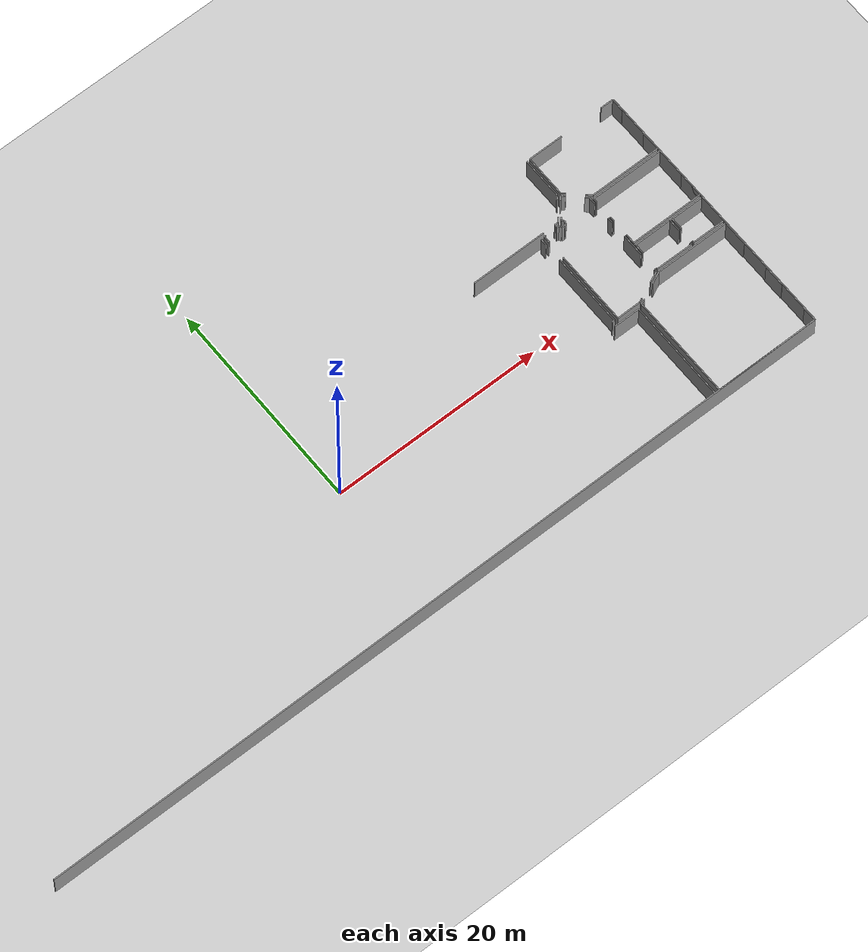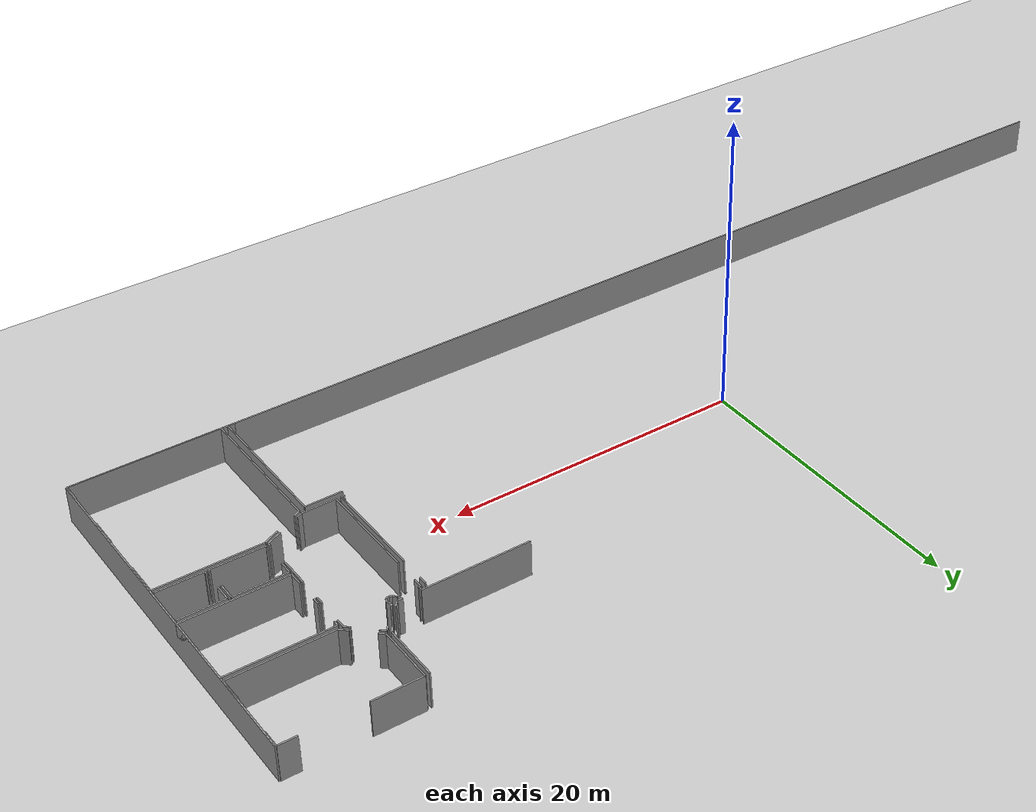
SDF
<sdf version="1.6">
 <world name="default">
  <model name="ground_plane">
   <static>1</static>
   <link name="link">
    <collision name="collision">
     <geometry><plane><normal>0 0 1</normal><size>100 100</size></plane></geometry>
     <surface><friction><ode><mu>100</mu><mu2>50</mu2></ode></friction></surface>
    </collision>
    <visual name="visual">
     <cast_shadows>0</cast_shadows>
     <geometry><plane><normal>0 0 1</normal><size>100 100</size></plane></geometry>
     <material>
      <script><uri>file://media/materials/scripts/gazebo.material</uri><name>Gazebo/Grey</name></script>
     </material>
    </visual>
   </link>
  </model>
  <model name="0510030968_A-40">
   <static>1</static>
   <link name="Wall_244">
    <collision name="Wall_244_Collision">
     <geometry><box><size>0.449204110929 0.1 2.5</size></box></geometry>
     <pose>0.224602055465 0 1.25 0 0 0</pose>
    </collision>
    <visual name="Wall_244_Visual">
     <pose>0.224602055465 0 1.25 0 0 0</pose>
     <geometry><box><size>0.449204110929 0.1 2.5</size></box></geometry>
     <material>
      <script><uri>file://media/materials/scripts/gazebo.material</uri><name>Gazebo/Grey</name></script>
      <ambient>1 1 1 1</ambient>
     </material>
    </visual>
    <pose>67.0569254418 -25.727225377 0 0 0 3.14159265359</pose>
   </link>
   <link name="Wall_248">
    <collision name="Wall_248_Collision">
     <geometry><box><size>2.50720937028 0.1 2.5</size></box></geometry>
     <pose>1.25360468514 0 1.25 0 0 0</pose>
    </collision>
    <visual name="Wall_248_Visual">
     <pose>1.25360468514 0 1.25 0 0 0</pose>
     <geometry><box><size>2.50720937028 0.1 2.5</size></box></geometry>
     <material>
      <script><uri>file://media/materials/scripts/gazebo.material</uri><name>Gazebo/Grey</name></script>
      <ambient>1 1 1 1</ambient>
     </material>
    </visual>
    <pose>64.5424749419 -16.0744184865 0 0 0 0.0</pose>
   </link>
   <link name="Wall_249">
    <collision name="Wall_249_Collision">
     <geometry><box><size>9.6528096065 0.1 2.5</size></box></geometry>
     <pose>4.82640480325 0 1.25 0 0 0</pose>
    </collision>
    <visual name="Wall_249_Visual">
     <pose>4.82640480325 0 1.25 0 0 0</pose>
     <geometry><box><size>9.6528096065 0.1 2.5</size></box></geometry>
     <material>
      <script><uri>file://media/materials/scripts/gazebo.material</uri><name>Gazebo/Grey</name></script>
      <ambient>1 1 1 1</ambient>
     </material>
    </visual>
    <pose>67.0496843122 -16.0744184865 0 0 0 -1.57004616901</pose>
   </link>
   <link name="Wall_255">
    <collision name="Wall_255_Collision">
     <geometry><box><size>0.601903019678 0.1 2.5</size></box></geometry>
     <pose>0.300951509839 0 1.25 0 0 0</pose>
    </collision>
    <visual name="Wall_255_Visual">
     <pose>0.300951509839 0 1.25 0 0 0</pose>
     <geometry><box><size>0.601903019678 0.1 2.5</size></box></geometry>
     <material>
      <script><uri>file://media/materials/scripts/gazebo.material</uri><name>Gazebo/Grey</name></script>
      <ambient>1 1 1 1</ambient>
     </material>
    </visual>
    <pose>64.8763291284 -6.28021901241 0 0 0 -1.57079632679</pose>
   </link>
   <link name="Wall_256">
    <collision name="Wall_256_Collision">
     <geometry><box><size>7.01144606629 0.1 2.5</size></box></geometry>
     <pose>3.50572303314 0 1.25 0 0 0</pose>
    </collision>
    <visual name="Wall_256_Visual">
     <pose>3.50572303314 0 1.25 0 0 0</pose>
     <geometry><box><size>7.01144606629 0.1 2.5</size></box></geometry>
     <material>
      <script><uri>file://media/materials/scripts/gazebo.material</uri><name>Gazebo/Grey</name></script>
      <ambient>1 1 1 1</ambient>
     </material>
    </visual>
    <pose>64.8763291284 -8.64070022994 0 0 0 -1.57079632679</pose>
   </link>
   <link name="Wall_257">
    <collision name="Wall_257_Collision">
     <geometry><box><size>0.233240596059 0.1 2.5</size></box></geometry>
     <pose>0.11662029803 0 1.25 0 0 0</pose>
    </collision>
    <visual name="Wall_257_Visual">
     <pose>0.11662029803 0 1.25 0 0 0</pose>
     <geometry><box><size>0.233240596059 0.1 2.5</size></box></geometry>
     <material>
      <script><uri>file://media/materials/scripts/gazebo.material</uri><name>Gazebo/Grey</name></script>
      <ambient>1 1 1 1</ambient>
     </material>
    </visual>
    <pose>64.8763291284 -15.6521462962 0 0 0 3.14159265359</pose>
   </link>
   <link name="Wall_265">
    <collision name="Wall_265_Collision">
     <geometry><box><size>7.01678163548 0.1 2.5</size></box></geometry>
     <pose>3.50839081774 0 1.25 0 0 0</pose>
    </collision>
    <visual name="Wall_265_Visual">
     <pose>3.50839081774 0 1.25 0 0 0</pose>
     <geometry><box><size>7.01678163548 0.1 2.5</size></box></geometry>
     <material>
      <script><uri>file://media/materials/scripts/gazebo.material</uri><name>Gazebo/Grey</name></script>
      <ambient>1 1 1 1</ambient>
     </material>
    </visual>
    <pose>65.2148836973 -15.6658663313 0 0 0 1.57079632679</pose>
   </link>
   <link name="Wall_266">
    <collision name="Wall_266_Collision">
     <geometry><box><size>0.673933203755 0.1 2.5</size></box></geometry>
     <pose>0.336966601878 0 1.25 0 0 0</pose>
    </collision>
    <visual name="Wall_266_Visual">
     <pose>0.336966601878 0 1.25 0 0 0</pose>
     <geometry><box><size>0.673933203755 0.1 2.5</size></box></geometry>
     <material>
      <script><uri>file://media/materials/scripts/gazebo.material</uri><name>Gazebo/Grey</name></script>
      <ambient>1 1 1 1</ambient>
     </material>
    </visual>
    <pose>65.2148836973 -6.88212203209 0 0 0 1.57079632679</pose>
   </link>
   <link name="Wall_267">
    <collision name="Wall_267_Collision">
     <geometry><box><size>0.166545981173 0.1 2.5</size></box></geometry>
     <pose>0.0832729905865 0 1.25 0 0 0</pose>
    </collision>
    <visual name="Wall_267_Visual">
     <pose>0.0832729905865 0 1.25 0 0 0</pose>
     <geometry><box><size>0.166545981173 0.1 2.5</size></box></geometry>
     <material>
      <script><uri>file://media/materials/scripts/gazebo.material</uri><name>Gazebo/Grey</name></script>
      <ambient>1 1 1 1</ambient>
     </material>
    </visual>
    <pose>65.2148836973 -6.20818882833 0 0 0 0.0</pose>
   </link>
   <link name="Wall_268">
    <collision name="Wall_268_Collision">
     <geometry><box><size>0.214439066529 0.1 2.5</size></box></geometry>
     <pose>0.107219533265 0 1.25 0 0 0</pose>
    </collision>
    <visual name="Wall_268_Visual">
     <pose>0.107219533265 0 1.25 0 0 0</pose>
     <geometry><box><size>0.214439066529 0.1 2.5</size></box></geometry>
     <material>
      <script><uri>file://media/materials/scripts/gazebo.material</uri><name>Gazebo/Grey</name></script>
      <ambient>1 1 1 1</ambient>
     </material>
    </visual>
    <pose>66.5218440743 -6.20818882833 0 0 0 0.0</pose>
   </link>
   <link name="Wall_269">
    <collision name="Wall_269_Collision">
     <geometry><box><size>0.289569648859 0.1 2.5</size></box></geometry>
     <pose>0.14478482443 0 1.25 0 0 0</pose>
    </collision>
    <visual name="Wall_269_Visual">
     <pose>0.14478482443 0 1.25 0 0 0</pose>
     <geometry><box><size>0.289569648859 0.1 2.5</size></box></geometry>
     <material>
      <script><uri>file://media/materials/scripts/gazebo.material</uri><name>Gazebo/Grey</name></script>
      <ambient>1 1 1 1</ambient>
     </material>
    </visual>
    <pose>66.7362831409 -6.20818882833 0 0 0 -0.913870261158</pose>
   </link>
   <link name="Wall_270">
    <collision name="Wall_270_Collision">
     <geometry><box><size>0.207731919569 0.1 2.5</size></box></geometry>
     <pose>0.103865959784 0 1.25 0 0 0</pose>
    </collision>
    <visual name="Wall_270_Visual">
     <pose>0.103865959784 0 1.25 0 0 0</pose>
     <geometry><box><size>0.207731919569 0.1 2.5</size></box></geometry>
     <material>
      <script><uri>file://media/materials/scripts/gazebo.material</uri><name>Gazebo/Grey</name></script>
      <ambient>1 1 1 1</ambient>
     </material>
    </visual>
    <pose>66.9131191483 -6.43749126618 0 0 0 -0.34109050254</pose>
   </link>
   <link name="Wall_271">
    <collision name="Wall_271_Collision">
     <geometry><box><size>0.215877186938 0.1 2.5</size></box></geometry>
     <pose>0.107938593469 0 1.25 0 0 0</pose>
    </collision>
    <visual name="Wall_271_Visual">
     <pose>0.107938593469 0 1.25 0 0 0</pose>
     <geometry><box><size>0.215877186938 0.1 2.5</size></box></geometry>
     <material>
      <script><uri>file://media/materials/scripts/gazebo.material</uri><name>Gazebo/Grey</name></script>
      <ambient>1 1 1 1</ambient>
     </material>
    </visual>
    <pose>67.1088837227 -6.50698070302 0 0 0 0.358977296068</pose>
   </link>
   <link name="Wall_272">
    <collision name="Wall_272_Collision">
     <geometry><box><size>0.266273976943 0.1 2.5</size></box></geometry>
     <pose>0.133136988472 0 1.25 0 0 0</pose>
    </collision>
    <visual name="Wall_272_Visual">
     <pose>0.133136988472 0 1.25 0 0 0</pose>
     <geometry><box><size>0.266273976943 0.1 2.5</size></box></geometry>
     <material>
      <script><uri>file://media/materials/scripts/gazebo.material</uri><name>Gazebo/Grey</name></script>
      <ambient>1 1 1 1</ambient>
     </material>
    </visual>
    <pose>67.3110001651 -6.4311393981 0 0 0 1.18125325052</pose>
   </link>
   <link name="Wall_273">
    <collision name="Wall_273_Collision">
     <geometry><box><size>0.296563000179 0.1 2.5</size></box></geometry>
     <pose>0.14828150009 0 1.25 0 0 0</pose>
    </collision>
    <visual name="Wall_273_Visual">
     <pose>0.14828150009 0 1.25 0 0 0</pose>
     <geometry><box><size>0.296563000179 0.1 2.5</size></box></geometry>
     <material>
      <script><uri>file://media/materials/scripts/gazebo.material</uri><name>Gazebo/Grey</name></script>
      <ambient>1 1 1 1</ambient>
     </material>
    </visual>
    <pose>67.4121219051 -6.18481395378 0 0 0 2.0344439358</pose>
   </link>
   <link name="Wall_274">
    <collision name="Wall_274_Collision">
     <geometry><box><size>0.232957461632 0.1 2.5</size></box></geometry>
     <pose>0.116478730816 0 1.25 0 0 0</pose>
    </collision>
    <visual name="Wall_274_Visual">
     <pose>0.116478730816 0 1.25 0 0 0</pose>
     <geometry><box><size>0.232957461632 0.1 2.5</size></box></geometry>
     <material>
      <script><uri>file://media/materials/scripts/gazebo.material</uri><name>Gazebo/Grey</name></script>
      <ambient>1 1 1 1</ambient>
     </material>
    </visual>
    <pose>67.2794948994 -5.91955994258 0 0 0 0.997918874391</pose>
   </link>
   <link name="Wall_275">
    <collision name="Wall_275_Collision">
     <geometry><box><size>0.393763568529 0.1 2.5</size></box></geometry>
     <pose>0.196881784265 0 1.25 0 0 0</pose>
    </collision>
    <visual name="Wall_275_Visual">
     <pose>0.196881784265 0 1.25 0 0 0</pose>
     <geometry><box><size>0.393763568529 0.1 2.5</size></box></geometry>
     <material>
      <script><uri>file://media/materials/scripts/gazebo.material</uri><name>Gazebo/Grey</name></script>
      <ambient>1 1 1 1</ambient>
     </material>
    </visual>
    <pose>68.3594395112 -4.47412884129 0 0 0 0.916261272057</pose>
   </link>
   <link name="Wall_276">
    <collision name="Wall_276_Collision">
     <geometry><box><size>0.421242750678 0.1 2.5</size></box></geometry>
     <pose>0.210621375339 0 1.25 0 0 0</pose>
    </collision>
    <visual name="Wall_276_Visual">
     <pose>0.210621375339 0 1.25 0 0 0</pose>
     <geometry><box><size>0.421242750678 0.1 2.5</size></box></geometry>
     <material>
      <script><uri>file://media/materials/scripts/gazebo.material</uri><name>Gazebo/Grey</name></script>
      <ambient>1 1 1 1</ambient>
     </material>
    </visual>
    <pose>68.5991590127 -4.1617439689 0 0 0 -0.761085548809</pose>
   </link>
   <link name="Wall_277">
    <collision name="Wall_277_Collision">
     <geometry><box><size>0.431219861559 0.1 2.5</size></box></geometry>
     <pose>0.215609930779 0 1.25 0 0 0</pose>
    </collision>
    <visual name="Wall_277_Visual">
     <pose>0.215609930779 0 1.25 0 0 0</pose>
     <geometry><box><size>0.431219861559 0.1 2.5</size></box></geometry>
     <material>
      <script><uri>file://media/materials/scripts/gazebo.material</uri><name>Gazebo/Grey</name></script>
      <ambient>1 1 1 1</ambient>
     </material>
    </visual>
    <pose>70.0307430415 -5.52002744007 0 0 0 -0.771649029836</pose>
   </link>
   <link name="Wall_278">
    <collision name="Wall_278_Collision">
     <geometry><box><size>0.626548267846 0.1 2.5</size></box></geometry>
     <pose>0.313274133923 0 1.25 0 0 0</pose>
    </collision>
    <visual name="Wall_278_Visual">
     <pose>0.313274133923 0 1.25 0 0 0</pose>
     <geometry><box><size>0.626548267846 0.1 2.5</size></box></geometry>
     <material>
      <script><uri>file://media/materials/scripts/gazebo.material</uri><name>Gazebo/Grey</name></script>
      <ambient>1 1 1 1</ambient>
     </material>
    </visual>
    <pose>70.3398249425 -5.82072487519 0 0 0 -1.57079632679</pose>
   </link>
   <link name="Wall_279">
    <collision name="Wall_279_Collision">
     <geometry><box><size>0.526315789474 0.1 2.5</size></box></geometry>
     <pose>0.263157894737 0 1.25 0 0 0</pose>
    </collision>
    <visual name="Wall_279_Visual">
     <pose>0.263157894737 0 1.25 0 0 0</pose>
     <geometry><box><size>0.526315789474 0.1 2.5</size></box></geometry>
     <material>
      <script><uri>file://media/materials/scripts/gazebo.material</uri><name>Gazebo/Grey</name></script>
      <ambient>1 1 1 1</ambient>
     </material>
    </visual>
    <pose>70.3398249425 -8.17625163561 0 0 0 -1.57079632679</pose>
   </link>
   <link name="Wall_280">
    <collision name="Wall_280_Collision">
     <geometry><box><size>2.10983650292 0.1 2.5</size></box></geometry>
     <pose>1.05491825146 0 1.25 0 0 0</pose>
    </collision>
    <visual name="Wall_280_Visual">
     <pose>1.05491825146 0 1.25 0 0 0</pose>
     <geometry><box><size>2.10983650292 0.1 2.5</size></box></geometry>
     <material>
      <script><uri>file://media/materials/scripts/gazebo.material</uri><name>Gazebo/Grey</name></script>
      <ambient>1 1 1 1</ambient>
     </material>
    </visual>
    <pose>70.3398249425 -10.2522962003 0 0 0 -1.57079632679</pose>
   </link>
   <link name="Wall_281">
    <collision name="Wall_281_Collision">
     <geometry><box><size>0.25890214312 0.1 2.5</size></box></geometry>
     <pose>0.12945107156 0 1.25 0 0 0</pose>
    </collision>
    <visual name="Wall_281_Visual">
     <pose>0.12945107156 0 1.25 0 0 0</pose>
     <geometry><box><size>0.25890214312 0.1 2.5</size></box></geometry>
     <material>
      <script><uri>file://media/materials/scripts/gazebo.material</uri><name>Gazebo/Grey</name></script>
      <ambient>1 1 1 1</ambient>
     </material>
    </visual>
    <pose>70.3398249425 -14.0984793628 0 0 0 -1.57079632679</pose>
   </link>
   <link name="Wall_282">
    <collision name="Wall_282_Collision">
     <geometry><box><size>1.12171335934 0.1 2.5</size></box></geometry>
     <pose>0.560856679672 0 1.25 0 0 0</pose>
    </collision>
    <visual name="Wall_282_Visual">
     <pose>0.560856679672 0 1.25 0 0 0</pose>
     <geometry><box><size>1.12171335934 0.1 2.5</size></box></geometry>
     <material>
      <script><uri>file://media/materials/scripts/gazebo.material</uri><name>Gazebo/Grey</name></script>
      <ambient>1 1 1 1</ambient>
     </material>
    </visual>
    <pose>70.3398249425 -14.3573815059 0 0 0 -2.72623160287</pose>
   </link>
   <link name="Wall_283">
    <collision name="Wall_283_Collision">
     <geometry><box><size>0.414827895004 0.1 2.5</size></box></geometry>
     <pose>0.207413947502 0 1.25 0 0 0</pose>
    </collision>
    <visual name="Wall_283_Visual">
     <pose>0.207413947502 0 1.25 0 0 0</pose>
     <geometry><box><size>0.414827895004 0.1 2.5</size></box></geometry>
     <material>
      <script><uri>file://media/materials/scripts/gazebo.material</uri><name>Gazebo/Grey</name></script>
      <ambient>1 1 1 1</ambient>
     </material>
    </visual>
    <pose>67.8674238093 -15.4767076997 0 0 0 -2.70492849237</pose>
   </link>
   <link name="Wall_284">
    <collision name="Wall_284_Collision">
     <geometry><box><size>2.27667789999 0.1 2.5</size></box></geometry>
     <pose>1.13833894999 0 1.25 0 0 0</pose>
    </collision>
    <visual name="Wall_284_Visual">
     <pose>1.13833894999 0 1.25 0 0 0</pose>
     <geometry><box><size>2.27667789999 0.1 2.5</size></box></geometry>
     <material>
      <script><uri>file://media/materials/scripts/gazebo.material</uri><name>Gazebo/Grey</name></script>
      <ambient>1 1 1 1</ambient>
     </material>
    </visual>
    <pose>67.4915202561 -15.6521462962 0 0 0 -3.13556627713</pose>
   </link>
   <link name="Wall_285">
    <collision name="Wall_285_Collision">
     <geometry><box><size>10.0132118856 0.1 2.5</size></box></geometry>
     <pose>5.00660594281 0 1.25 0 0 0</pose>
    </collision>
    <visual name="Wall_285_Visual">
     <pose>5.00660594281 0 1.25 0 0 0</pose>
     <geometry><box><size>10.0132118856 0.1 2.5</size></box></geometry>
     <material>
      <script><uri>file://media/materials/scripts/gazebo.material</uri><name>Gazebo/Grey</name></script>
      <ambient>1 1 1 1</ambient>
     </material>
    </visual>
    <pose>77.5184521768 -25.7277335264 0 0 0 3.14159265359</pose>
   </link>
   <link name="Wall_286">
    <collision name="Wall_286_Collision">
     <geometry><box><size>9.8358677287 0.1 2.5</size></box></geometry>
     <pose>4.91793386435 0 1.25 0 0 0</pose>
    </collision>
    <visual name="Wall_286_Visual">
     <pose>4.91793386435 0 1.25 0 0 0</pose>
     <geometry><box><size>9.8358677287 0.1 2.5</size></box></geometry>
     <material>
      <script><uri>file://media/materials/scripts/gazebo.material</uri><name>Gazebo/Grey</name></script>
      <ambient>1 1 1 1</ambient>
     </material>
    </visual>
    <pose>67.5052402912 -25.7277335264 0 0 0 1.57079632679</pose>
   </link>
   <link name="Wall_287">
    <collision name="Wall_287_Collision">
     <geometry><box><size>0.494679799902 0.1 2.5</size></box></geometry>
     <pose>0.247339899951 0 1.25 0 0 0</pose>
    </collision>
    <visual name="Wall_287_Visual">
     <pose>0.247339899951 0 1.25 0 0 0</pose>
     <geometry><box><size>0.494679799902 0.1 2.5</size></box></geometry>
     <material>
      <script><uri>file://media/materials/scripts/gazebo.material</uri><name>Gazebo/Grey</name></script>
      <ambient>1 1 1 1</ambient>
     </material>
    </visual>
    <pose>67.5052402912 -15.8918657977 0 0 0 0.441250435797</pose>
   </link>
   <link name="Wall_288">
    <collision name="Wall_288_Collision">
     <geometry><box><size>1.16869617731 0.1 2.5</size></box></geometry>
     <pose>0.584348088654 0 1.25 0 0 0</pose>
    </collision>
    <visual name="Wall_288_Visual">
     <pose>0.584348088654 0 1.25 0 0 0</pose>
     <geometry><box><size>1.16869617731 0.1 2.5</size></box></geometry>
     <material>
      <script><uri>file://media/materials/scripts/gazebo.material</uri><name>Gazebo/Grey</name></script>
      <ambient>1 1 1 1</ambient>
     </material>
    </visual>
    <pose>69.3838687958 -15.017721712 0 0 0 0.441624524289</pose>
   </link>
   <link name="Wall_289">
    <collision name="Wall_289_Collision">
     <geometry><box><size>7.06226101096 0.1 2.5</size></box></geometry>
     <pose>3.53113050548 0 1.25 0 0 0</pose>
    </collision>
    <visual name="Wall_289_Visual">
     <pose>3.53113050548 0 1.25 0 0 0</pose>
     <geometry><box><size>7.06226101096 0.1 2.5</size></box></geometry>
     <material>
      <script><uri>file://media/materials/scripts/gazebo.material</uri><name>Gazebo/Grey</name></script>
      <ambient>1 1 1 1</ambient>
     </material>
    </visual>
    <pose>70.440438533 -14.5182108058 0 0 0 0.0</pose>
   </link>
   <link name="Wall_290">
    <collision name="Wall_290_Collision">
     <geometry><box><size>2.36111640433 0.1 2.5</size></box></geometry>
     <pose>1.18055820217 0 1.25 0 0 0</pose>
    </collision>
    <visual name="Wall_290_Visual">
     <pose>1.18055820217 0 1.25 0 0 0</pose>
     <geometry><box><size>2.36111640433 0.1 2.5</size></box></geometry>
     <material>
      <script><uri>file://media/materials/scripts/gazebo.material</uri><name>Gazebo/Grey</name></script>
      <ambient>1 1 1 1</ambient>
     </material>
    </visual>
    <pose>77.5026995439 -14.5182108058 0 0 0 -1.57079632679</pose>
   </link>
   <link name="Wall_291">
    <collision name="Wall_291_Collision">
     <geometry><box><size>2.0150666311 0.1 2.5</size></box></geometry>
     <pose>1.00753331555 0 1.25 0 0 0</pose>
    </collision>
    <visual name="Wall_291_Visual">
     <pose>1.00753331555 0 1.25 0 0 0</pose>
     <geometry><box><size>2.0150666311 0.1 2.5</size></box></geometry>
     <material>
      <script><uri>file://media/materials/scripts/gazebo.material</uri><name>Gazebo/Grey</name></script>
      <ambient>1 1 1 1</ambient>
     </material>
    </visual>
    <pose>77.5026995439 -19.6364190708 0 0 0 -1.57079632679</pose>
   </link>
   <link name="Wall_292">
    <collision name="Wall_292_Collision">
     <geometry><box><size>1.27047127945 0.1 2.5</size></box></geometry>
     <pose>0.635235639725 0 1.25 0 0 0</pose>
    </collision>
    <visual name="Wall_292_Visual">
     <pose>0.635235639725 0 1.25 0 0 0</pose>
     <geometry><box><size>1.27047127945 0.1 2.5</size></box></geometry>
     <material>
      <script><uri>file://media/materials/scripts/gazebo.material</uri><name>Gazebo/Grey</name></script>
      <ambient>1 1 1 1</ambient>
     </material>
    </visual>
    <pose>77.5026995439 -24.4573599095 0 0 0 -1.55839696228</pose>
   </link>
   <link name="Wall_293">
    <collision name="Wall_293_Collision">
     <geometry><box><size>0.10162988935 0.1 2.5</size></box></geometry>
     <pose>0.0508149446752 0 1.25 0 0 0</pose>
    </collision>
    <visual name="Wall_293_Visual">
     <pose>0.0508149446752 0 1.25 0 0 0</pose>
     <geometry><box><size>0.10162988935 0.1 2.5</size></box></geometry>
     <material>
      <script><uri>file://media/materials/scripts/gazebo.material</uri><name>Gazebo/Grey</name></script>
      <ambient>1 1 1 1</ambient>
     </material>
    </visual>
    <pose>70.5239020796 -14.2288196959 0 0 0 1.57079632679</pose>
   </link>
   <link name="Wall_294">
    <collision name="Wall_294_Collision">
     <geometry><box><size>0.914669004154 0.1 2.5</size></box></geometry>
     <pose>0.457334502077 0 1.25 0 0 0</pose>
    </collision>
    <visual name="Wall_294_Visual">
     <pose>0.457334502077 0 1.25 0 0 0</pose>
     <geometry><box><size>0.914669004154 0.1 2.5</size></box></geometry>
     <material>
      <script><uri>file://media/materials/scripts/gazebo.material</uri><name>Gazebo/Grey</name></script>
      <ambient>1 1 1 1</ambient>
     </material>
    </visual>
    <pose>70.5239020796 -12.3628949274 0 0 0 1.57079632679</pose>
   </link>
   <link name="Wall_295">
    <collision name="Wall_295_Collision">
     <geometry><box><size>3.60811514666 0.1 2.5</size></box></geometry>
     <pose>1.80405757333 0 1.25 0 0 0</pose>
    </collision>
    <visual name="Wall_295_Visual">
     <pose>1.80405757333 0 1.25 0 0 0</pose>
     <geometry><box><size>3.60811514666 0.1 2.5</size></box></geometry>
     <material>
      <script><uri>file://media/materials/scripts/gazebo.material</uri><name>Gazebo/Grey</name></script>
      <ambient>1 1 1 1</ambient>
     </material>
    </visual>
    <pose>70.5239020796 -11.4482259232 0 0 0 0.0</pose>
   </link>
   <link name="Wall_296">
    <collision name="Wall_296_Collision">
     <geometry><box><size>1.21358791621 0.1 2.5</size></box></geometry>
     <pose>0.606793958103 0 1.25 0 0 0</pose>
    </collision>
    <visual name="Wall_296_Visual">
     <pose>0.606793958103 0 1.25 0 0 0</pose>
     <geometry><box><size>1.21358791621 0.1 2.5</size></box></geometry>
     <material>
      <script><uri>file://media/materials/scripts/gazebo.material</uri><name>Gazebo/Grey</name></script>
      <ambient>1 1 1 1</ambient>
     </material>
    </visual>
    <pose>74.1320172263 -11.4482259232 0 0 0 -1.57079632679</pose>
   </link>
   <link name="Wall_297">
    <collision name="Wall_297_Collision">
     <geometry><box><size>0.208341273168 0.1 2.5</size></box></geometry>
     <pose>0.104170636584 0 1.25 0 0 0</pose>
    </collision>
    <visual name="Wall_297_Visual">
     <pose>0.104170636584 0 1.25 0 0 0</pose>
     <geometry><box><size>0.208341273168 0.1 2.5</size></box></geometry>
     <material>
      <script><uri>file://media/materials/scripts/gazebo.material</uri><name>Gazebo/Grey</name></script>
      <ambient>1 1 1 1</ambient>
     </material>
    </visual>
    <pose>74.1320172263 -14.0419477368 0 0 0 -1.57079632679</pose>
   </link>
   <link name="Wall_298">
    <collision name="Wall_298_Collision">
     <geometry><box><size>3.60817902037 0.1 2.5</size></box></geometry>
     <pose>1.80408951019 0 1.25 0 0 0</pose>
    </collision>
    <visual name="Wall_298_Visual">
     <pose>1.80408951019 0 1.25 0 0 0</pose>
     <geometry><box><size>3.60817902037 0.1 2.5</size></box></geometry>
     <material>
      <script><uri>file://media/materials/scripts/gazebo.material</uri><name>Gazebo/Grey</name></script>
      <ambient>1 1 1 1</ambient>
     </material>
    </visual>
    <pose>74.1320172263 -14.25028901 0 0 0 3.13564243862</pose>
   </link>
   <link name="Wall_299">
    <collision name="Wall_299_Collision">
     <geometry><box><size>3.08357788025 0.1 2.5</size></box></geometry>
     <pose>1.54178894013 0 1.25 0 0 0</pose>
    </collision>
    <visual name="Wall_299_Visual">
     <pose>1.54178894013 0 1.25 0 0 0</pose>
     <geometry><box><size>3.08357788025 0.1 2.5</size></box></geometry>
     <material>
      <script><uri>file://media/materials/scripts/gazebo.material</uri><name>Gazebo/Grey</name></script>
      <ambient>1 1 1 1</ambient>
     </material>
    </visual>
    <pose>77.4335912192 -11.4827800856 0 0 0 3.14159265359</pose>
   </link>
   <link name="Wall_300">
    <collision name="Wall_300_Collision">
     <geometry><box><size>1.15273701996 0.1 2.5</size></box></geometry>
     <pose>0.576368509979 0 1.25 0 0 0</pose>
    </collision>
    <visual name="Wall_300_Visual">
     <pose>0.576368509979 0 1.25 0 0 0</pose>
     <geometry><box><size>1.15273701996 0.1 2.5</size></box></geometry>
     <material>
      <script><uri>file://media/materials/scripts/gazebo.material</uri><name>Gazebo/Grey</name></script>
      <ambient>1 1 1 1</ambient>
     </material>
    </visual>
    <pose>74.3500133389 -11.4827800856 0 0 0 -1.57079632679</pose>
   </link>
   <link name="Wall_301">
    <collision name="Wall_301_Collision">
     <geometry><box><size>0.183187875554 0.1 2.5</size></box></geometry>
     <pose>0.0915939377771 0 1.25 0 0 0</pose>
    </collision>
    <visual name="Wall_301_Visual">
     <pose>0.0915939377771 0 1.25 0 0 0</pose>
     <geometry><box><size>0.183187875554 0.1 2.5</size></box></geometry>
     <material>
      <script><uri>file://media/materials/scripts/gazebo.material</uri><name>Gazebo/Grey</name></script>
      <ambient>1 1 1 1</ambient>
     </material>
    </visual>
    <pose>74.3500133389 -14.0419477368 0 0 0 -1.57079632679</pose>
   </link>
   <link name="Wall_302">
    <collision name="Wall_302_Collision">
     <geometry><box><size>3.08367234692 0.1 2.5</size></box></geometry>
     <pose>1.54183617346 0 1.25 0 0 0</pose>
    </collision>
    <visual name="Wall_302_Visual">
     <pose>1.54183617346 0 1.25 0 0 0</pose>
     <geometry><box><size>3.08367234692 0.1 2.5</size></box></geometry>
     <material>
      <script><uri>file://media/materials/scripts/gazebo.material</uri><name>Gazebo/Grey</name></script>
      <ambient>1 1 1 1</ambient>
     </material>
    </visual>
    <pose>74.3500133389 -14.2251356124 0 0 0 -0.00782746754</pose>
   </link>
   <link name="Wall_303">
    <collision name="Wall_303_Collision">
     <geometry><box><size>2.35946491863 0.1 2.5</size></box></geometry>
     <pose>1.17973245932 0 1.25 0 0 0</pose>
    </collision>
    <visual name="Wall_303_Visual">
     <pose>1.17973245932 0 1.25 0 0 0</pose>
     <geometry><box><size>2.35946491863 0.1 2.5</size></box></geometry>
     <material>
      <script><uri>file://media/materials/scripts/gazebo.material</uri><name>Gazebo/Grey</name></script>
      <ambient>1 1 1 1</ambient>
     </material>
    </visual>
    <pose>77.5469085458 -11.2123175426 0 0 0 1.57079632679</pose>
   </link>
   <link name="Wall_304">
    <collision name="Wall_304_Collision">
     <geometry><box><size>7.02326054093 0.1 2.5</size></box></geometry>
     <pose>3.51163027046 0 1.25 0 0 0</pose>
    </collision>
    <visual name="Wall_304_Visual">
     <pose>3.51163027046 0 1.25 0 0 0</pose>
     <geometry><box><size>7.02326054093 0.1 2.5</size></box></geometry>
     <material>
      <script><uri>file://media/materials/scripts/gazebo.material</uri><name>Gazebo/Grey</name></script>
      <ambient>1 1 1 1</ambient>
     </material>
    </visual>
    <pose>77.5469085458 -6.0713695898 0 0 0 3.14159265359</pose>
   </link>
   <link name="Wall_305">
    <collision name="Wall_305_Collision">
     <geometry><box><size>0.400929913488 0.1 2.5</size></box></geometry>
     <pose>0.200464956744 0 1.25 0 0 0</pose>
    </collision>
    <visual name="Wall_305_Visual">
     <pose>0.200464956744 0 1.25 0 0 0</pose>
     <geometry><box><size>0.400929913488 0.1 2.5</size></box></geometry>
     <material>
      <script><uri>file://media/materials/scripts/gazebo.material</uri><name>Gazebo/Grey</name></script>
      <ambient>1 1 1 1</ambient>
     </material>
    </visual>
    <pose>70.5236480049 -6.0713695898 0 0 0 -1.57079632679</pose>
   </link>
   <link name="Wall_306">
    <collision name="Wall_306_Collision">
     <geometry><box><size>0.49290496335 0.1 2.5</size></box></geometry>
     <pose>0.246452481675 0 1.25 0 0 0</pose>
    </collision>
    <visual name="Wall_306_Visual">
     <pose>0.246452481675 0 1.25 0 0 0</pose>
     <geometry><box><size>0.49290496335 0.1 2.5</size></box></geometry>
     <material>
      <script><uri>file://media/materials/scripts/gazebo.material</uri><name>Gazebo/Grey</name></script>
      <ambient>1 1 1 1</ambient>
     </material>
    </visual>
    <pose>70.5236480049 -8.20966246173 0 0 0 -1.57079632679</pose>
   </link>
   <link name="Wall_307">
    <collision name="Wall_307_Collision">
     <geometry><box><size>0.928134964493 0.1 2.5</size></box></geometry>
     <pose>0.464067482247 0 1.25 0 0 0</pose>
    </collision>
    <visual name="Wall_307_Visual">
     <pose>0.464067482247 0 1.25 0 0 0</pose>
     <geometry><box><size>0.928134964493 0.1 2.5</size></box></geometry>
     <material>
      <script><uri>file://media/materials/scripts/gazebo.material</uri><name>Gazebo/Grey</name></script>
      <ambient>1 1 1 1</ambient>
     </material>
    </visual>
    <pose>70.5236480049 -10.2789740463 0 0 0 -1.57079632679</pose>
   </link>
   <link name="Wall_308">
    <collision name="Wall_308_Collision">
     <geometry><box><size>7.02326247228 0.1 2.5</size></box></geometry>
     <pose>3.51163123614 0 1.25 0 0 0</pose>
    </collision>
    <visual name="Wall_308_Visual">
     <pose>3.51163123614 0 1.25 0 0 0</pose>
     <geometry><box><size>7.02326247228 0.1 2.5</size></box></geometry>
     <material>
      <script><uri>file://media/materials/scripts/gazebo.material</uri><name>Gazebo/Grey</name></script>
      <ambient>1 1 1 1</ambient>
     </material>
    </visual>
    <pose>70.5236480049 -11.2071090108 0 0 0 -0.000741611512769</pose>
   </link>
   <link name="Wall_309">
    <collision name="Wall_309_Collision">
     <geometry><box><size>6.83791303022 0.1 2.5</size></box></geometry>
     <pose>3.41895651511 0 1.25 0 0 0</pose>
    </collision>
    <visual name="Wall_309_Visual">
     <pose>3.41895651511 0 1.25 0 0 0</pose>
     <geometry><box><size>6.83791303022 0.1 2.5</size></box></geometry>
     <material>
      <script><uri>file://media/materials/scripts/gazebo.material</uri><name>Gazebo/Grey</name></script>
      <ambient>1 1 1 1</ambient>
     </material>
    </visual>
    <pose>77.5358562953 -5.78845738532 0 0 0 3.14159265359</pose>
   </link>
   <link name="Wall_310">
    <collision name="Wall_310_Collision">
     <geometry><box><size>0.621429195982 0.1 2.5</size></box></geometry>
     <pose>0.310714597991 0 1.25 0 0 0</pose>
    </collision>
    <visual name="Wall_310_Visual">
     <pose>0.310714597991 0 1.25 0 0 0</pose>
     <geometry><box><size>0.621429195982 0.1 2.5</size></box></geometry>
     <material>
      <script><uri>file://media/materials/scripts/gazebo.material</uri><name>Gazebo/Grey</name></script>
      <ambient>1 1 1 1</ambient>
     </material>
    </visual>
    <pose>70.6979432651 -5.78845738532 0 0 0 2.39754821545</pose>
   </link>
   <link name="Wall_311">
    <collision name="Wall_311_Collision">
     <geometry><box><size>0.462102380135 0.1 2.5</size></box></geometry>
     <pose>0.231051190067 0 1.25 0 0 0</pose>
    </collision>
    <visual name="Wall_311_Visual">
     <pose>0.231051190067 0 1.25 0 0 0</pose>
     <geometry><box><size>0.462102380135 0.1 2.5</size></box></geometry>
     <material>
      <script><uri>file://media/materials/scripts/gazebo.material</uri><name>Gazebo/Grey</name></script>
      <ambient>1 1 1 1</ambient>
     </material>
    </visual>
    <pose>69.08609322 -4.27836426693 0 0 0 2.38574636681</pose>
   </link>
   <link name="Wall_312">
    <collision name="Wall_312_Collision">
     <geometry><box><size>3.95759492867 0.1 2.5</size></box></geometry>
     <pose>1.97879746433 0 1.25 0 0 0</pose>
    </collision>
    <visual name="Wall_312_Visual">
     <pose>1.97879746433 0 1.25 0 0 0</pose>
     <geometry><box><size>3.95759492867 0.1 2.5</size></box></geometry>
     <material>
      <script><uri>file://media/materials/scripts/gazebo.material</uri><name>Gazebo/Grey</name></script>
      <ambient>1 1 1 1</ambient>
     </material>
    </visual>
    <pose>68.7498253236 -3.96140604952 0 0 0 1.57079632679</pose>
   </link>
   <link name="Wall_313">
    <collision name="Wall_313_Collision">
     <geometry><box><size>3.32367849385 0.1 2.5</size></box></geometry>
     <pose>1.66183924692 0 1.25 0 0 0</pose>
    </collision>
    <visual name="Wall_313_Visual">
     <pose>1.66183924692 0 1.25 0 0 0</pose>
     <geometry><box><size>3.32367849385 0.1 2.5</size></box></geometry>
     <material>
      <script><uri>file://media/materials/scripts/gazebo.material</uri><name>Gazebo/Grey</name></script>
      <ambient>1 1 1 1</ambient>
     </material>
    </visual>
    <pose>68.7498253236 -0.00381112085064 0 0 0 0.0</pose>
   </link>
   <link name="Wall_314">
    <collision name="Wall_314_Collision">
     <geometry><box><size>1.25055578846 0.1 2.5</size></box></geometry>
     <pose>0.625277894229 0 1.25 0 0 0</pose>
    </collision>
    <visual name="Wall_314_Visual">
     <pose>0.625277894229 0 1.25 0 0 0</pose>
     <geometry><box><size>1.25055578846 0.1 2.5</size></box></geometry>
     <material>
      <script><uri>file://media/materials/scripts/gazebo.material</uri><name>Gazebo/Grey</name></script>
      <ambient>1 1 1 1</ambient>
     </material>
    </visual>
    <pose>76.254430428 -0.00381112085064 0 0 0 0.0</pose>
   </link>
   <link name="Wall_315">
    <collision name="Wall_315_Collision">
     <geometry><box><size>1.23556537978 0.1 2.5</size></box></geometry>
     <pose>0.617782689889 0 1.25 0 0 0</pose>
    </collision>
    <visual name="Wall_315_Visual">
     <pose>0.617782689889 0 1.25 0 0 0</pose>
     <geometry><box><size>1.23556537978 0.1 2.5</size></box></geometry>
     <material>
      <script><uri>file://media/materials/scripts/gazebo.material</uri><name>Gazebo/Grey</name></script>
      <ambient>1 1 1 1</ambient>
     </material>
    </visual>
    <pose>77.5049862164 -0.00381112085064 0 0 0 -1.57079632679</pose>
   </link>
   <link name="Wall_316">
    <collision name="Wall_316_Collision">
     <geometry><box><size>1.74716349869 0.1 2.5</size></box></geometry>
     <pose>0.873581749344 0 1.25 0 0 0</pose>
    </collision>
    <visual name="Wall_316_Visual">
     <pose>0.873581749344 0 1.25 0 0 0</pose>
     <geometry><box><size>1.74716349869 0.1 2.5</size></box></geometry>
     <material>
      <script><uri>file://media/materials/scripts/gazebo.material</uri><name>Gazebo/Grey</name></script>
      <ambient>1 1 1 1</ambient>
     </material>
    </visual>
    <pose>77.5049862164 -4.04156662474 0 0 0 -1.55312672385</pose>
   </link>
   <link name="Wall_320">
    <collision name="Wall_320_Collision">
     <geometry><box><size>3.89788736868 0.1 2.5</size></box></geometry>
     <pose>1.94894368434 0 1.25 0 0 0</pose>
    </collision>
    <visual name="Wall_320_Visual">
     <pose>1.94894368434 0 1.25 0 0 0</pose>
     <geometry><box><size>3.89788736868 0.1 2.5</size></box></geometry>
     <material>
      <script><uri>file://media/materials/scripts/gazebo.material</uri><name>Gazebo/Grey</name></script>
      <ambient>1 1 1 1</ambient>
     </material>
    </visual>
    <pose>68.443665282 -0.0154985581259 0 0 0 -1.57079632679</pose>
   </link>
   <link name="Wall_321">
    <collision name="Wall_321_Collision">
     <geometry><box><size>0.448438827775 0.1 2.5</size></box></geometry>
     <pose>0.224219413888 0 1.25 0 0 0</pose>
    </collision>
    <visual name="Wall_321_Visual">
     <pose>0.224219413888 0 1.25 0 0 0</pose>
     <geometry><box><size>0.448438827775 0.1 2.5</size></box></geometry>
     <material>
      <script><uri>file://media/materials/scripts/gazebo.material</uri><name>Gazebo/Grey</name></script>
      <ambient>1 1 1 1</ambient>
     </material>
    </visual>
    <pose>68.443665282 -3.9133859268 0 0 0 -2.19078236024</pose>
   </link>
   <link name="Wall_322">
    <collision name="Wall_322_Collision">
     <geometry><box><size>0.467596435052 0.1 2.5</size></box></geometry>
     <pose>0.233798217526 0 1.25 0 0 0</pose>
    </collision>
    <visual name="Wall_322_Visual">
     <pose>0.233798217526 0 1.25 0 0 0</pose>
     <geometry><box><size>0.467596435052 0.1 2.5</size></box></geometry>
     <material>
      <script><uri>file://media/materials/scripts/gazebo.material</uri><name>Gazebo/Grey</name></script>
      <ambient>1 1 1 1</ambient>
     </material>
    </visual>
    <pose>67.2158491812 -5.57846462645 0 0 0 -2.29294882806</pose>
   </link>
   <link name="Wall_323">
    <collision name="Wall_323_Collision">
     <geometry><box><size>0.359134621492 0.1 2.5</size></box></geometry>
     <pose>0.179567310746 0 1.25 0 0 0</pose>
    </collision>
    <visual name="Wall_323_Visual">
     <pose>0.179567310746 0 1.25 0 0 0</pose>
     <geometry><box><size>0.359134621492 0.1 2.5</size></box></geometry>
     <material>
      <script><uri>file://media/materials/scripts/gazebo.material</uri><name>Gazebo/Grey</name></script>
      <ambient>1 1 1 1</ambient>
     </material>
    </visual>
    <pose>66.9067672803 -5.92934181943 0 0 0 3.14159265359</pose>
   </link>
   <link name="Wall_324">
    <collision name="Wall_324_Collision">
     <geometry><box><size>7.24761058028 0.1 2.5</size></box></geometry>
     <pose>3.62380529014 0 1.25 0 0 0</pose>
    </collision>
    <visual name="Wall_324_Visual">
     <pose>3.62380529014 0 1.25 0 0 0</pose>
     <geometry><box><size>7.24761058028 0.1 2.5</size></box></geometry>
     <material>
      <script><uri>file://media/materials/scripts/gazebo.material</uri><name>Gazebo/Grey</name></script>
      <ambient>1 1 1 1</ambient>
     </material>
    </visual>
    <pose>65.3865111729 -5.92934181943 0 0 0 -3.14083894214</pose>
   </link>
   <link name="Wall_325">
    <collision name="Wall_325_Collision">
     <geometry><box><size>25.7399291132 0.1 2.5</size></box></geometry>
     <pose>12.8699645566 0 1.25 0 0 0</pose>
    </collision>
    <visual name="Wall_325_Visual">
     <pose>12.8699645566 0 1.25 0 0 0</pose>
     <geometry><box><size>25.7399291132 0.1 2.5</size></box></geometry>
     <material>
      <script><uri>file://media/materials/scripts/gazebo.material</uri><name>Gazebo/Grey</name></script>
      <ambient>1 1 1 1</ambient>
     </material>
    </visual>
    <pose>77.5469085458 -25.7399291132 0 0 0 1.57079632679</pose>
   </link>
   <link name="Wall_326">
    <collision name="Wall_326_Collision">
     <geometry><box><size>77.5469085458 0.1 2.5</size></box></geometry>
     <pose>38.7734542729 0 1.25 0 0 0</pose>
    </collision>
    <visual name="Wall_326_Visual">
     <pose>38.7734542729 0 1.25 0 0 0</pose>
     <geometry><box><size>77.5469085458 0.1 2.5</size></box></geometry>
     <material>
      <script><uri>file://media/materials/scripts/gazebo.material</uri><name>Gazebo/Grey</name></script>
      <ambient>1 1 1 1</ambient>
     </material>
    </visual>
    <pose>77.5469085458 -25.7399291132 0 0 0 3.14159265359</pose>
   </link>
   <pose>-38.75 12.8899291132 0 0 0 0</pose>
  </model>
 </world>
</sdf>
